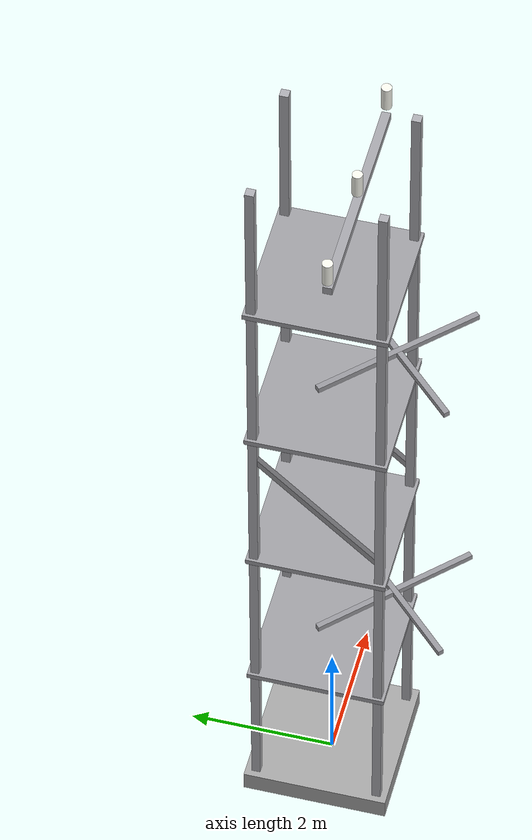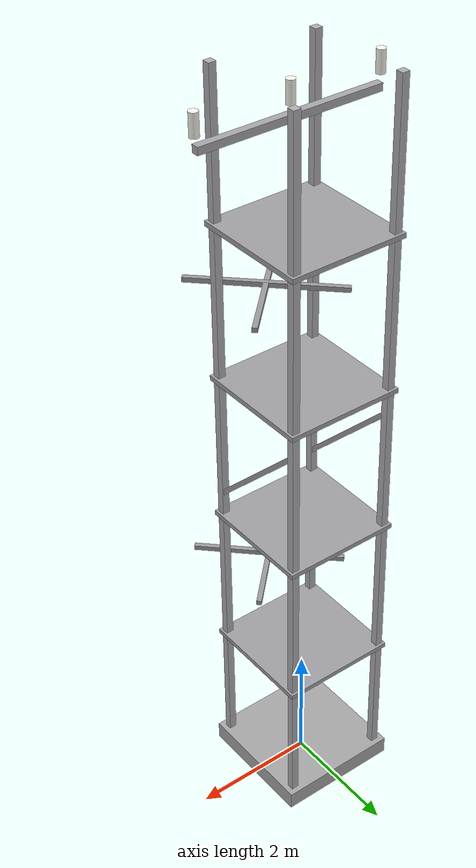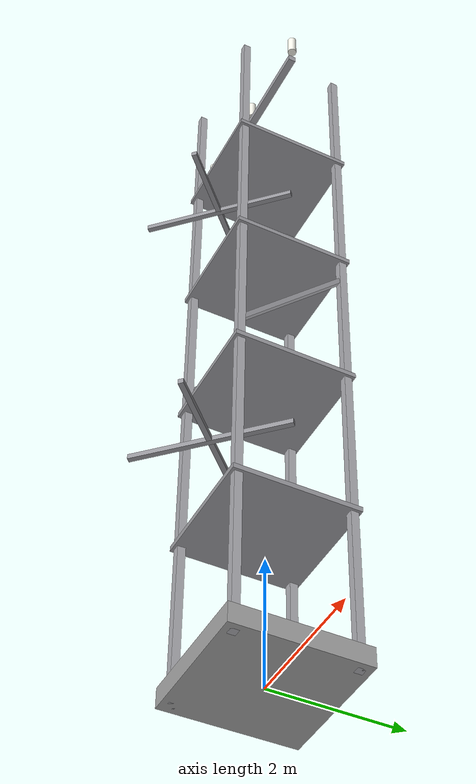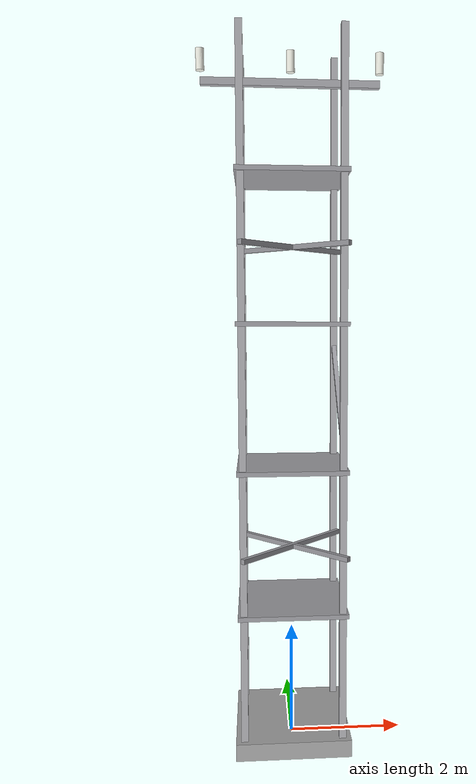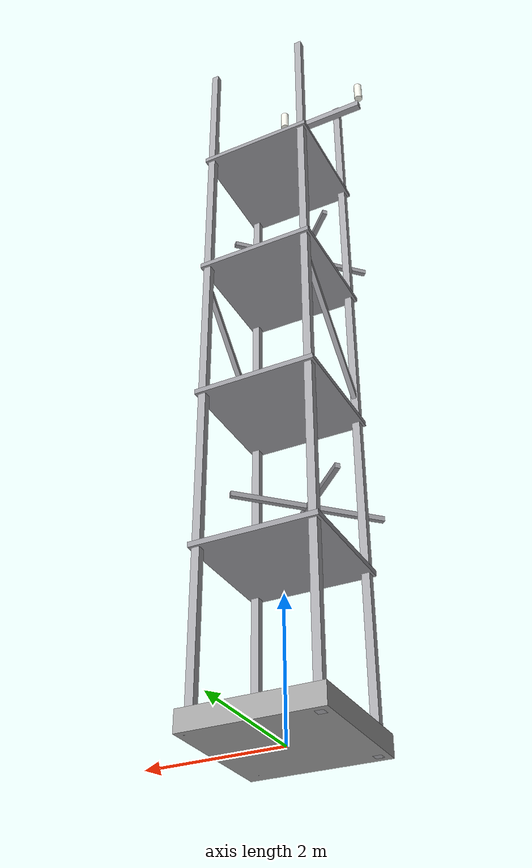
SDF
<?xml version="1.0"?>
<sdf version="1.10">
  <model name="tower">
    <static>true</static>
    <link name="link">

      <!-- 2m x 2m concrete foundation -->
      <visual name="foundation">
        <pose>0 0 0.15 0 0 0</pose>
        <geometry>
          <box><size>2.0 2.0 0.3</size></box>
        </geometry>
        <material>
          <ambient>0.55 0.55 0.55 1</ambient>
          <diffuse>0.65 0.65 0.65 1</diffuse>
        </material>
      </visual>

      <!-- Four lattice legs (12 m) -->
      <visual name="leg_fl">
        <pose>-0.85 -0.85 6.15 0 0 0</pose>
        <geometry><box><size>0.12 0.12 12.3</size></box></geometry>
        <material><ambient>0.58 0.58 0.60 1</ambient><diffuse>0.68 0.68 0.70 1</diffuse></material>
      </visual>
      <visual name="leg_fr">
        <pose>0.85 -0.85 6.15 0 0 0</pose>
        <geometry><box><size>0.12 0.12 12.3</size></box></geometry>
        <material><ambient>0.58 0.58 0.60 1</ambient><diffuse>0.68 0.68 0.70 1</diffuse></material>
      </visual>
      <visual name="leg_bl">
        <pose>-0.85 0.85 6.15 0 0 0</pose>
        <geometry><box><size>0.12 0.12 12.3</size></box></geometry>
        <material><ambient>0.58 0.58 0.60 1</ambient><diffuse>0.68 0.68 0.70 1</diffuse></material>
      </visual>
      <visual name="leg_br">
        <pose>0.85 0.85 6.15 0 0 0</pose>
        <geometry><box><size>0.12 0.12 12.3</size></box></geometry>
        <material><ambient>0.58 0.58 0.60 1</ambient><diffuse>0.68 0.68 0.70 1</diffuse></material>
      </visual>

      <!-- Horizontal lattice belts -->
      <visual name="belt_1"><pose>0 0 2.5 0 0 0</pose><geometry><box><size>1.9 1.9 0.08</size></box></geometry>
        <material><ambient>0.52 0.52 0.54 1</ambient><diffuse>0.62 0.62 0.64 1</diffuse></material></visual>
      <visual name="belt_2"><pose>0 0 5.0 0 0 0</pose><geometry><box><size>1.9 1.9 0.08</size></box></geometry>
        <material><ambient>0.52 0.52 0.54 1</ambient><diffuse>0.62 0.62 0.64 1</diffuse></material></visual>
      <visual name="belt_3"><pose>0 0 7.5 0 0 0</pose><geometry><box><size>1.9 1.9 0.08</size></box></geometry>
        <material><ambient>0.52 0.52 0.54 1</ambient><diffuse>0.62 0.62 0.64 1</diffuse></material></visual>
      <visual name="belt_4"><pose>0 0 10.0 0 0 0</pose><geometry><box><size>1.9 1.9 0.08</size></box></geometry>
        <material><ambient>0.52 0.52 0.54 1</ambient><diffuse>0.62 0.62 0.64 1</diffuse></material></visual>

      <!-- Diagonal bracing (X pattern on front face) -->
      <visual name="diag_f1"><pose>0 -0.85 3.75 0 0 0.785</pose><geometry><box><size>2.4 0.08 0.08</size></box></geometry>
        <material><ambient>0.50 0.50 0.52 1</ambient><diffuse>0.60 0.60 0.62 1</diffuse></material></visual>
      <visual name="diag_f2"><pose>0 -0.85 3.75 0 0 -0.785</pose><geometry><box><size>2.4 0.08 0.08</size></box></geometry>
        <material><ambient>0.50 0.50 0.52 1</ambient><diffuse>0.60 0.60 0.62 1</diffuse></material></visual>
      <visual name="diag_f3"><pose>0 -0.85 8.75 0 0 0.785</pose><geometry><box><size>2.4 0.08 0.08</size></box></geometry>
        <material><ambient>0.50 0.50 0.52 1</ambient><diffuse>0.60 0.60 0.62 1</diffuse></material></visual>
      <visual name="diag_f4"><pose>0 -0.85 8.75 0 0 -0.785</pose><geometry><box><size>2.4 0.08 0.08</size></box></geometry>
        <material><ambient>0.50 0.50 0.52 1</ambient><diffuse>0.60 0.60 0.62 1</diffuse></material></visual>

      <!-- Side bracing -->
      <visual name="diag_s1"><pose>0.85 0 6.25 0.785 0 0</pose><geometry><box><size>0.08 2.4 0.08</size></box></geometry>
        <material><ambient>0.50 0.50 0.52 1</ambient><diffuse>0.60 0.60 0.62 1</diffuse></material></visual>
      <visual name="diag_s2"><pose>-0.85 0 6.25 0.785 0 0</pose><geometry><box><size>0.08 2.4 0.08</size></box></geometry>
        <material><ambient>0.50 0.50 0.52 1</ambient><diffuse>0.60 0.60 0.62 1</diffuse></material></visual>

      <!-- Top crossarm (3 m) -->
      <visual name="crossarm">
        <pose>0 -0.3 11.5 0 0 0</pose>
        <geometry><box><size>3.0 0.12 0.12</size></box></geometry>
        <material><ambient>0.55 0.55 0.57 1</ambient><diffuse>0.65 0.65 0.67 1</diffuse></material>
      </visual>

      <!-- Climbing rungs -->
      <visual name="rung_1"><pose>-0.85 -0.85 4.0 0 0 0.785</pose><geometry><cylinder><radius>0.02</radius><length>0.9</length></cylinder></geometry>
        <material><ambient>0.45 0.45 0.45 1</ambient><diffuse>0.55 0.55 0.55 1</diffuse></material></visual>
      <visual name="rung_2"><pose>-0.85 -0.85 7.0 0 0 0.785</pose><geometry><cylinder><radius>0.02</radius><length>0.9</length></cylinder></geometry>
        <material><ambient>0.45 0.45 0.45 1</ambient><diffuse>0.55 0.55 0.55 1</diffuse></material></visual>
      <visual name="rung_3"><pose>-0.85 -0.85 10.0 0 0 0.785</pose><geometry><cylinder><radius>0.02</radius><length>0.9</length></cylinder></geometry>
        <material><ambient>0.45 0.45 0.45 1</ambient><diffuse>0.55 0.55 0.55 1</diffuse></material></visual>

      <!-- Phase A insulator (left) -->
      <visual name="ins_a">
        <pose>-1.5 -0.3 11.85 0 0 0</pose>
        <geometry><cylinder><radius>0.07</radius><length>0.35</length></cylinder></geometry>
        <material><ambient>0.92 0.92 0.88 1</ambient><diffuse>0.97 0.97 0.93 1</diffuse></material>
      </visual>
      <!-- Phase B insulator (center) -->
      <visual name="ins_b">
        <pose>0 -0.3 11.85 0 0 0</pose>
        <geometry><cylinder><radius>0.07</radius><length>0.35</length></cylinder></geometry>
        <material><ambient>0.92 0.92 0.88 1</ambient><diffuse>0.97 0.97 0.93 1</diffuse></material>
      </visual>
      <!-- Phase C insulator (right) -->
      <visual name="ins_c">
        <pose>1.5 -0.3 11.85 0 0 0</pose>
        <geometry><cylinder><radius>0.07</radius><length>0.35</length></cylinder></geometry>
        <material><ambient>0.92 0.92 0.88 1</ambient><diffuse>0.97 0.97 0.93 1</diffuse></material>
      </visual>

      <collision name="collision">
        <pose>0 0 6.15 0 0 0</pose>
        <geometry><box><size>2.0 2.0 12.3</size></box></geometry>
      </collision>
    </link>
  </model>
</sdf>
